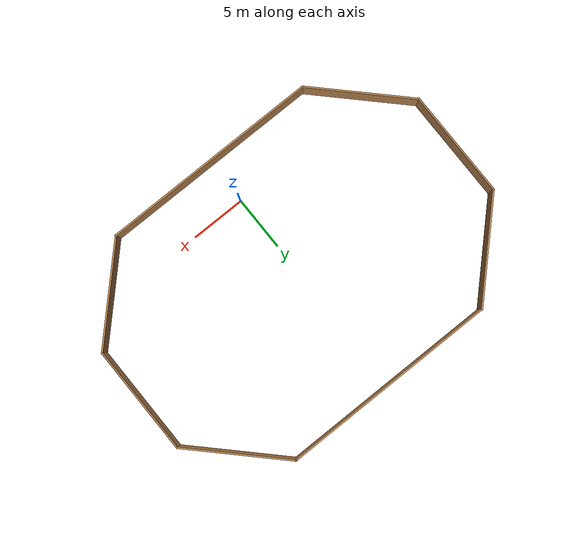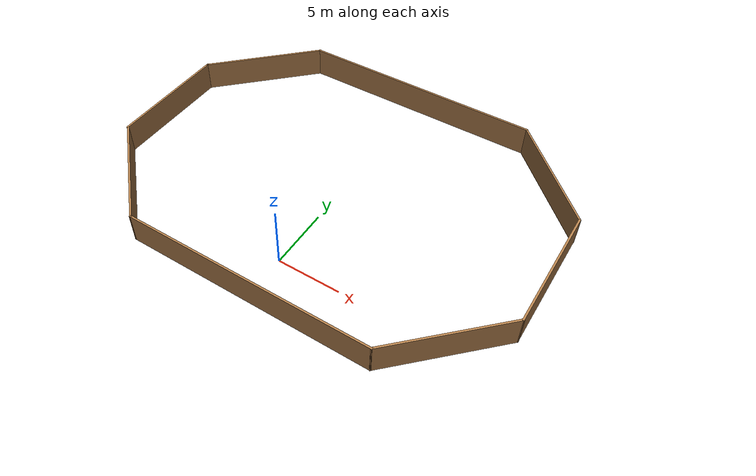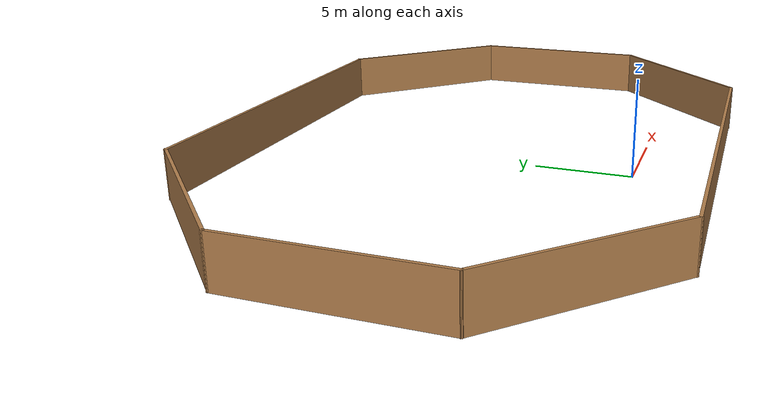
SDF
<?xml version='1.0'?>
<sdf version='1.6'>
  <model name='world'>
    <pose frame=''>0 7.97844 0 0 -0 0</pose>
    <link name='Wall_12'>
      <collision name='Wall_12_Collision'>
        <geometry>
          <box>
            <size>20.15 0.15 2.5</size>
          </box>
        </geometry>
        <pose frame=''>0 0 1.25 0 -0 0</pose>
      </collision>
      <visual name='Wall_12_Visual'>
        <pose frame=''>0 0 1.25 0 -0 0</pose>
        <geometry>
          <box>
            <size>20.15 0.15 2.5</size>
          </box>
        </geometry>
        <material>
          <script>
            <uri>file://media/materials/scripts/gazebo.material</uri>
            <name>Gazebo/Wood</name>
          </script>
          <ambient>1 1 1 1</ambient>
        </material>
        <meta>
          <layer>0</layer>
        </meta>
      </visual>
      <pose frame=''>0 -11.9784 0 0 -0 0</pose>
    </link>
    <link name='Wall_19'>
      <collision name='Wall_19_Collision'>
        <geometry>
          <box>
            <size>10 0.15 2.5</size>
          </box>
        </geometry>
        <pose frame=''>0 0 1.25 0 -0 0</pose>
      </collision>
      <visual name='Wall_19_Visual'>
        <pose frame=''>0 0 1.25 0 -0 0</pose>
        <geometry>
          <box>
            <size>10 0.15 2.5</size>
          </box>
        </geometry>
        <material>
          <script>
            <uri>file://media/materials/scripts/gazebo.material</uri>
            <name>Gazebo/Wood</name>
          </script>
          <ambient>1 1 1 1</ambient>
        </material>
        <meta>
          <layer>0</layer>
        </meta>
      </visual>
      <pose frame=''>13.4825 -8.49594 0 0 -0 0.785398</pose>
    </link>
    <link name='Wall_21'>
      <collision name='Wall_21_Collision'>
        <geometry>
          <box>
            <size>10.15 0.15 2.5</size>
          </box>
        </geometry>
        <pose frame=''>0 0 1.25 0 -0 0</pose>
      </collision>
      <visual name='Wall_21_Visual'>
        <pose frame=''>0 0 1.25 0 -0 0</pose>
        <geometry>
          <box>
            <size>10.15 0.15 2.5</size>
          </box>
        </geometry>
        <material>
          <script>
            <uri>file://media/materials/scripts/gazebo.material</uri>
            <name>Gazebo/Wood</name>
          </script>
          <ambient>1 1 1 1</ambient>
        </material>
        <meta>
          <layer>0</layer>
        </meta>
      </visual>
      <pose frame=''>16.965 -0.013444 0 0 -0 1.5708</pose>
    </link>
    <link name='Wall_26'>
      <collision name='Wall_26_Collision'>
        <geometry>
          <box>
            <size>10 0.15 2.5</size>
          </box>
        </geometry>
        <pose frame=''>0 0 1.25 0 -0 0</pose>
      </collision>
      <visual name='Wall_26_Visual'>
        <pose frame=''>0 0 1.25 0 -0 0</pose>
        <geometry>
          <box>
            <size>10 0.15 2.5</size>
          </box>
        </geometry>
        <material>
          <script>
            <uri>file://media/materials/scripts/gazebo.material</uri>
            <name>Gazebo/Wood</name>
          </script>
          <ambient>1 1 1 1</ambient>
        </material>
        <meta>
          <layer>0</layer>
        </meta>
      </visual>
      <pose frame=''>13.4825 8.46906 0 0 -0 2.35619</pose>
    </link>
    <link name='Wall_30'>
      <collision name='Wall_30_Collision'>
        <geometry>
          <box>
            <size>20 0.15 2.5</size>
          </box>
        </geometry>
        <pose frame=''>0 0 1.25 0 -0 0</pose>
      </collision>
      <visual name='Wall_30_Visual'>
        <pose frame=''>0 0 1.25 0 -0 0</pose>
        <geometry>
          <box>
            <size>20 0.15 2.5</size>
          </box>
        </geometry>
        <material>
          <script>
            <uri>file://media/materials/scripts/gazebo.material</uri>
            <name>Gazebo/Wood</name>
          </script>
          <ambient>1 1 1 1</ambient>
        </material>
        <meta>
          <layer>0</layer>
        </meta>
      </visual>
      <pose frame=''>0.075 11.9516 0 0 -0 3.14159</pose>
    </link>
    <link name='Wall_32'>
      <collision name='Wall_32_Collision'>
        <geometry>
          <box>
            <size>10 0.15 2.5</size>
          </box>
        </geometry>
        <pose frame=''>0 0 1.25 0 -0 0</pose>
      </collision>
      <visual name='Wall_32_Visual'>
        <pose frame=''>0 0 1.25 0 -0 0</pose>
        <geometry>
          <box>
            <size>10 0.15 2.5</size>
          </box>
        </geometry>
        <material>
          <script>
            <uri>file://media/materials/scripts/gazebo.material</uri>
            <name>Gazebo/Wood</name>
          </script>
          <ambient>1 1 1 1</ambient>
        </material>
        <meta>
          <layer>0</layer>
        </meta>
      </visual>
      <pose frame=''>-13.4825 -8.49594 0 0 -0 2.35619</pose>
    </link>
    <link name='Wall_34'>
      <collision name='Wall_34_Collision'>
        <geometry>
          <box>
            <size>10 0.15 2.5</size>
          </box>
        </geometry>
        <pose frame=''>0 0 1.25 0 -0 0</pose>
      </collision>
      <visual name='Wall_34_Visual'>
        <pose frame=''>0 0 1.25 0 -0 0</pose>
        <geometry>
          <box>
            <size>10 0.15 2.5</size>
          </box>
        </geometry>
        <material>
          <script>
            <uri>file://media/materials/scripts/gazebo.material</uri>
            <name>Gazebo/Wood</name>
          </script>
          <ambient>1 1 1 1</ambient>
        </material>
        <meta>
          <layer>0</layer>
        </meta>
      </visual>
      <pose frame=''>-16.965 -0.088444 0 0 -0 1.5708</pose>
    </link>
    <link name='Wall_36'>
      <collision name='Wall_36_Collision'>
        <geometry>
          <box>
            <size>10.25 0.15 2.5</size>
          </box>
        </geometry>
        <pose frame=''>0 0 1.25 0 -0 0</pose>
      </collision>
      <visual name='Wall_36_Visual'>
        <pose frame=''>0 0 1.25 0 -0 0</pose>
        <geometry>
          <box>
            <size>10.25 0.15 2.5</size>
          </box>
        </geometry>
        <material>
          <script>
            <uri>file://media/materials/scripts/gazebo.material</uri>
            <name>Gazebo/Wood</name>
          </script>
          <ambient>1 1 1 1</ambient>
        </material>
        <meta>
          <layer>0</layer>
        </meta>
      </visual>
      <pose frame=''>-13.394 8.40756 0 0 -0 0.785398</pose>
    </link>
    <static>1</static>
  </model>
</sdf>
